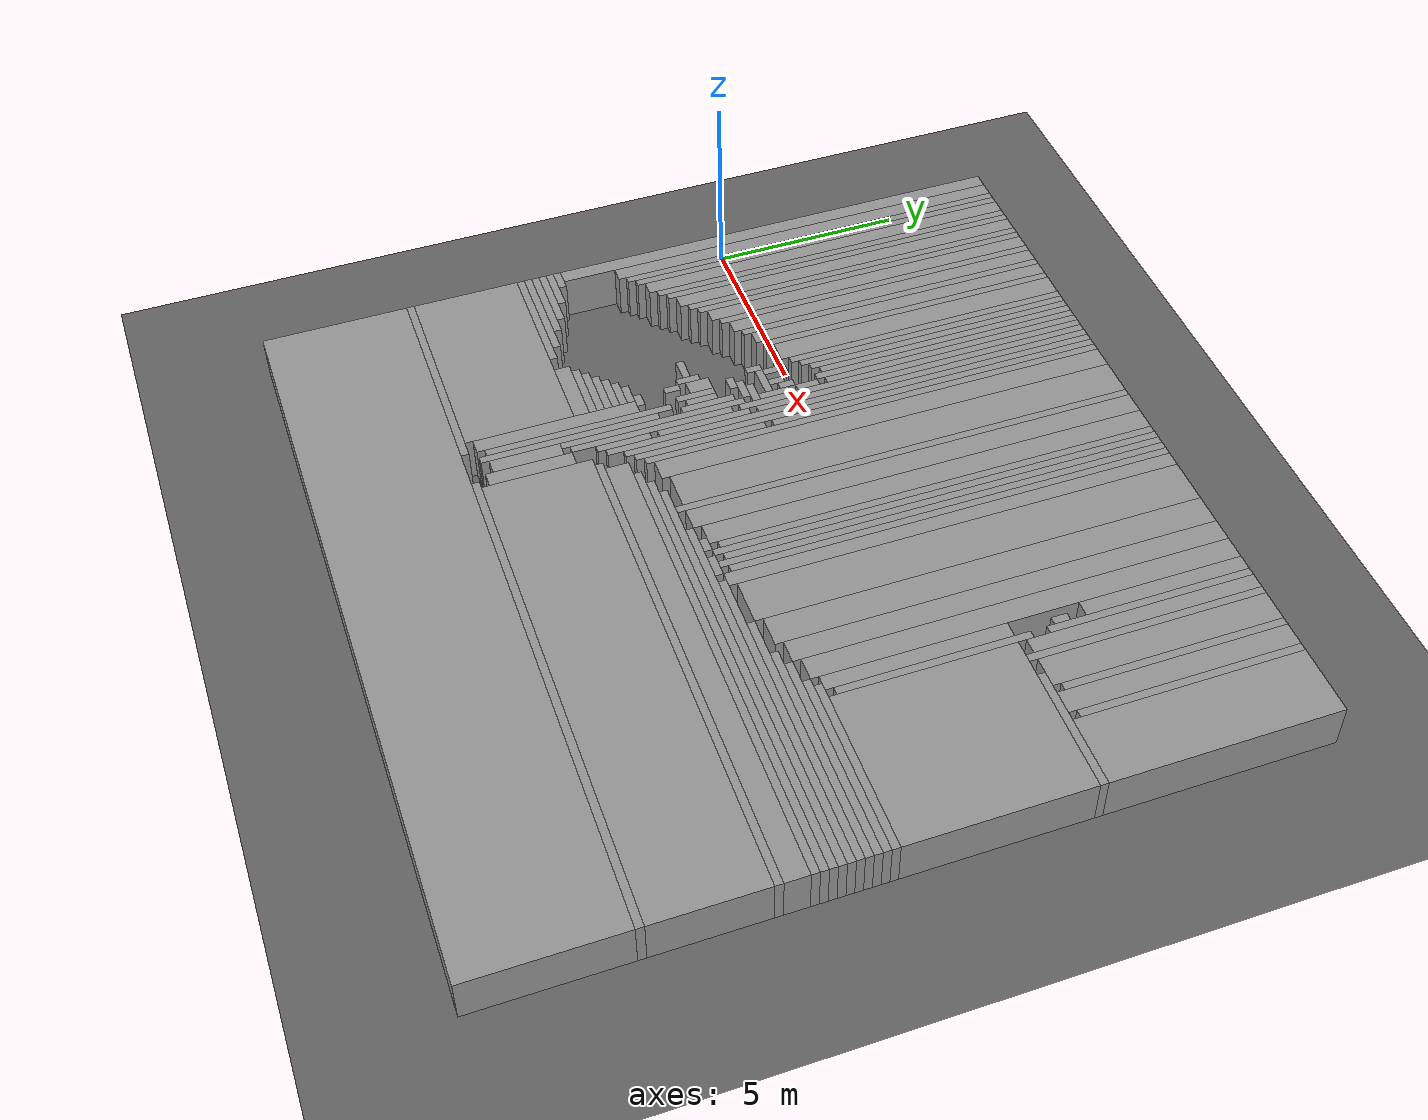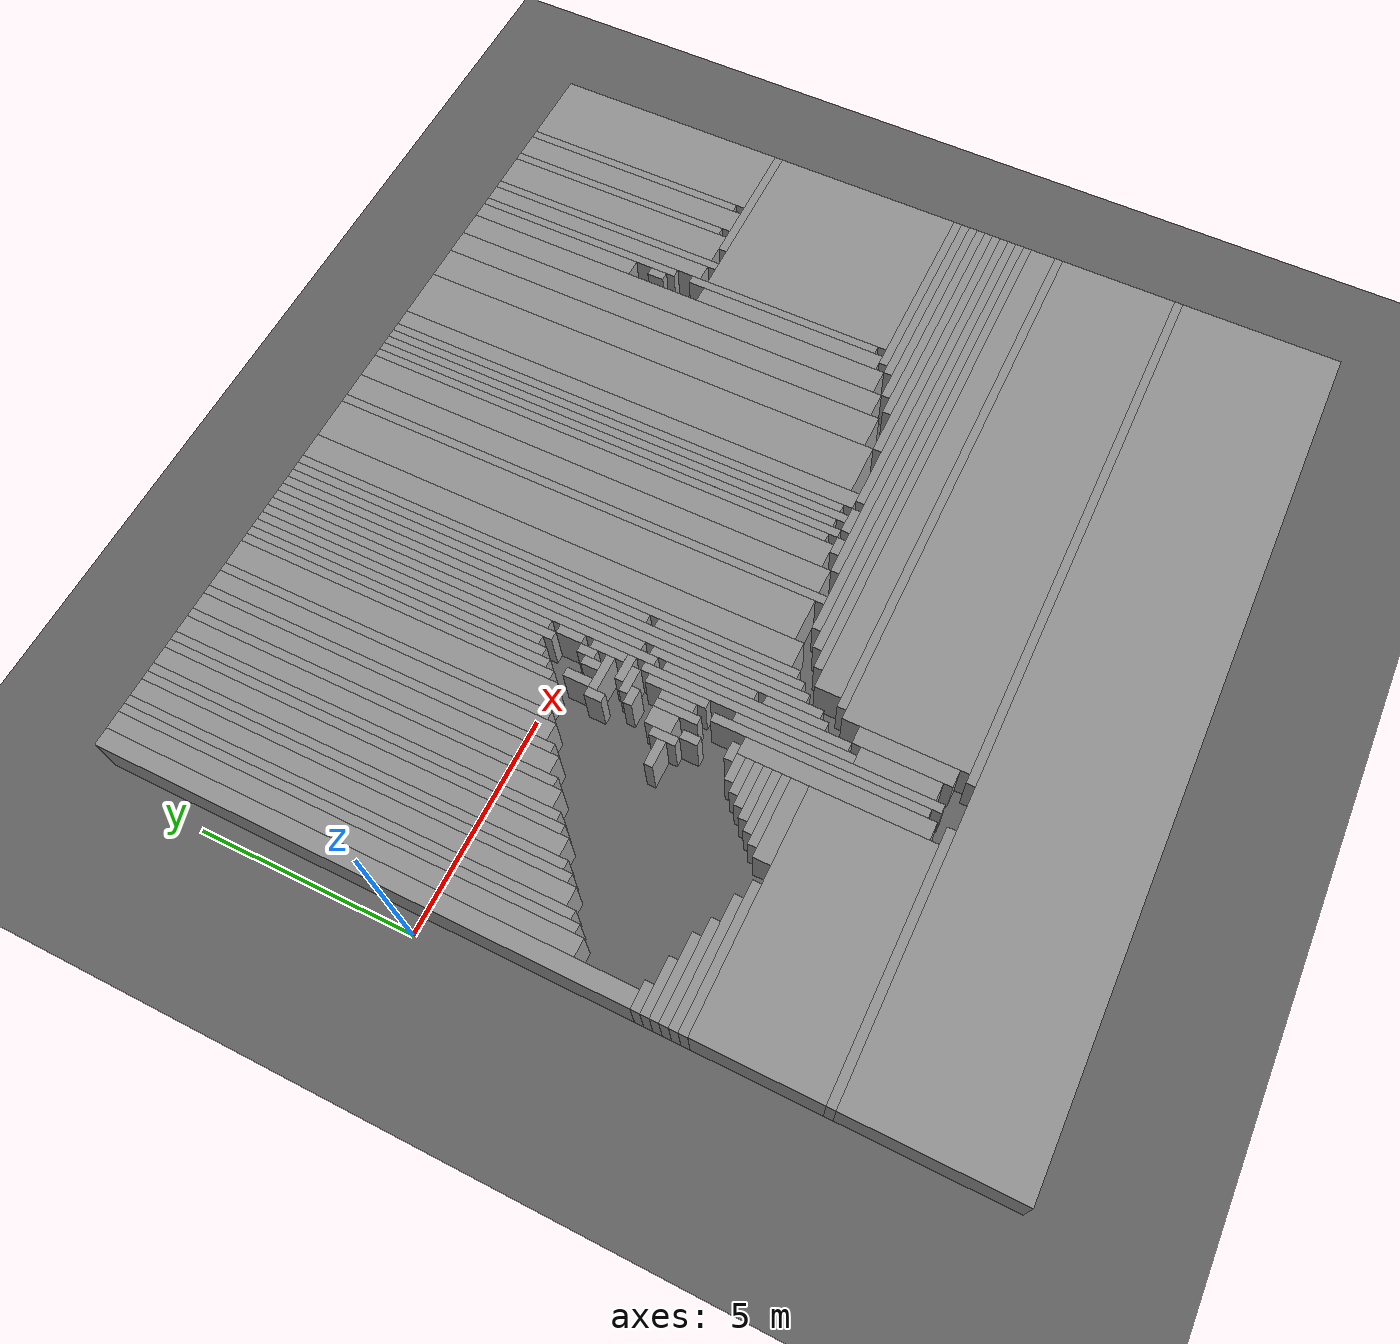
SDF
<?xml version="1.0" ?>
<sdf version="1.8">
  <world name="realroom_replica">
    <physics name="1ms" type="ignored"><max_step_size>0.001</max_step_size><real_time_factor>1.0</real_time_factor></physics>
    <plugin filename="gz-sim-physics-system" name="gz::sim::systems::Physics"/>
    <plugin filename="gz-sim-user-commands-system" name="gz::sim::systems::UserCommands"/>
    <plugin filename="gz-sim-scene-broadcaster-system" name="gz::sim::systems::SceneBroadcaster"/>
    <plugin filename="gz-sim-sensors-system" name="gz::sim::systems::Sensors"><render_engine>ogre2</render_engine></plugin>
    <gravity>0 0 -9.8</gravity>
    <light type="directional" name="sun">
      <cast_shadows>true</cast_shadows>
      <pose>0 0 10 0 0 0</pose>
      <diffuse>0.8 0.8 0.8 1</diffuse>
      <direction>-0.5 0.1 -0.9</direction>
    </light>
    <model name="ground_plane">
      <static>true</static>
      <link name="link">
        <collision name="collision"><geometry><plane><normal>0 0 1</normal><size>100 100</size></plane></geometry></collision>
        <visual name="visual"><geometry><plane><normal>0 0 1</normal><size>100 100</size></plane></geometry>
          <material><ambient>0.3 0.3 0.3 1</ambient><diffuse>0.4 0.4 0.4 1</diffuse></material></visual>
      </link>
    </model>
    <model name="obstacle_0">
      <static>true</static>
      <pose>10.400 -10.817 0.600 0 0 0</pose>
      <link name="link">
        <collision name="collision">
          <geometry><box><size>20.000 3.800 1.200</size></box></geometry>
        </collision>
        <visual name="visual">
          <geometry><box><size>20.000 3.800 1.200</size></box></geometry>
          <material><ambient>0.5 0.5 0.5 1</ambient><diffuse>0.6 0.6 0.6 1</diffuse></material>
        </visual>
      </link>
    </model>
    <model name="obstacle_1">
      <static>true</static>
      <pose>3.300 -8.817 0.600 0 0 0</pose>
      <link name="link">
        <collision name="collision">
          <geometry><box><size>5.800 0.200 1.200</size></box></geometry>
        </collision>
        <visual name="visual">
          <geometry><box><size>5.800 0.200 1.200</size></box></geometry>
          <material><ambient>0.5 0.5 0.5 1</ambient><diffuse>0.6 0.6 0.6 1</diffuse></material>
        </visual>
      </link>
    </model>
    <model name="obstacle_2">
      <static>true</static>
      <pose>13.800 -8.817 0.600 0 0 0</pose>
      <link name="link">
        <collision name="collision">
          <geometry><box><size>13.200 0.200 1.200</size></box></geometry>
        </collision>
        <visual name="visual">
          <geometry><box><size>13.200 0.200 1.200</size></box></geometry>
          <material><ambient>0.5 0.5 0.5 1</ambient><diffuse>0.6 0.6 0.6 1</diffuse></material>
        </visual>
      </link>
    </model>
    <model name="obstacle_3">
      <static>true</static>
      <pose>3.100 -7.317 0.600 0 0 0</pose>
      <link name="link">
        <collision name="collision">
          <geometry><box><size>5.400 2.800 1.200</size></box></geometry>
        </collision>
        <visual name="visual">
          <geometry><box><size>5.400 2.800 1.200</size></box></geometry>
          <material><ambient>0.5 0.5 0.5 1</ambient><diffuse>0.6 0.6 0.6 1</diffuse></material>
        </visual>
      </link>
    </model>
    <model name="obstacle_4">
      <static>true</static>
      <pose>13.900 -7.317 0.600 0 0 0</pose>
      <link name="link">
        <collision name="collision">
          <geometry><box><size>13.000 2.800 1.200</size></box></geometry>
        </collision>
        <visual name="visual">
          <geometry><box><size>13.000 2.800 1.200</size></box></geometry>
          <material><ambient>0.5 0.5 0.5 1</ambient><diffuse>0.6 0.6 0.6 1</diffuse></material>
        </visual>
      </link>
    </model>
    <model name="obstacle_5">
      <static>true</static>
      <pose>6.000 -6.417 0.600 0 0 0</pose>
      <link name="link">
        <collision name="collision">
          <geometry><box><size>0.400 4.200 1.200</size></box></geometry>
        </collision>
        <visual name="visual">
          <geometry><box><size>0.400 4.200 1.200</size></box></geometry>
          <material><ambient>0.5 0.5 0.5 1</ambient><diffuse>0.6 0.6 0.6 1</diffuse></material>
        </visual>
      </link>
    </model>
    <model name="obstacle_6">
      <static>true</static>
      <pose>6.500 -6.217 0.600 0 0 0</pose>
      <link name="link">
        <collision name="collision">
          <geometry><box><size>0.200 4.600 1.200</size></box></geometry>
        </collision>
        <visual name="visual">
          <geometry><box><size>0.200 4.600 1.200</size></box></geometry>
          <material><ambient>0.5 0.5 0.5 1</ambient><diffuse>0.6 0.6 0.6 1</diffuse></material>
        </visual>
      </link>
    </model>
    <model name="obstacle_7">
      <static>true</static>
      <pose>7.200 -7.417 0.600 0 0 0</pose>
      <link name="link">
        <collision name="collision">
          <geometry><box><size>0.400 2.200 1.200</size></box></geometry>
        </collision>
        <visual name="visual">
          <geometry><box><size>0.400 2.200 1.200</size></box></geometry>
          <material><ambient>0.5 0.5 0.5 1</ambient><diffuse>0.6 0.6 0.6 1</diffuse></material>
        </visual>
      </link>
    </model>
    <model name="obstacle_8">
      <static>true</static>
      <pose>6.300 -5.917 0.600 0 0 0</pose>
      <link name="link">
        <collision name="collision">
          <geometry><box><size>0.200 4.800 1.200</size></box></geometry>
        </collision>
        <visual name="visual">
          <geometry><box><size>0.200 4.800 1.200</size></box></geometry>
          <material><ambient>0.5 0.5 0.5 1</ambient><diffuse>0.6 0.6 0.6 1</diffuse></material>
        </visual>
      </link>
    </model>
    <model name="obstacle_9">
      <static>true</static>
      <pose>6.800 -7.417 0.600 0 0 0</pose>
      <link name="link">
        <collision name="collision">
          <geometry><box><size>0.400 1.800 1.200</size></box></geometry>
        </collision>
        <visual name="visual">
          <geometry><box><size>0.400 1.800 1.200</size></box></geometry>
          <material><ambient>0.5 0.5 0.5 1</ambient><diffuse>0.6 0.6 0.6 1</diffuse></material>
        </visual>
      </link>
    </model>
    <model name="obstacle_10">
      <static>true</static>
      <pose>6.700 -4.117 0.600 0 0 0</pose>
      <link name="link">
        <collision name="collision">
          <geometry><box><size>0.200 4.800 1.200</size></box></geometry>
        </collision>
        <visual name="visual">
          <geometry><box><size>0.200 4.800 1.200</size></box></geometry>
          <material><ambient>0.5 0.5 0.5 1</ambient><diffuse>0.6 0.6 0.6 1</diffuse></material>
        </visual>
      </link>
    </model>
    <model name="obstacle_11">
      <static>true</static>
      <pose>6.900 -4.217 0.600 0 0 0</pose>
      <link name="link">
        <collision name="collision">
          <geometry><box><size>0.200 4.200 1.200</size></box></geometry>
        </collision>
        <visual name="visual">
          <geometry><box><size>0.200 4.200 1.200</size></box></geometry>
          <material><ambient>0.5 0.5 0.5 1</ambient><diffuse>0.6 0.6 0.6 1</diffuse></material>
        </visual>
      </link>
    </model>
    <model name="obstacle_12">
      <static>true</static>
      <pose>2.000 -5.817 0.600 0 0 0</pose>
      <link name="link">
        <collision name="collision">
          <geometry><box><size>3.200 0.200 1.200</size></box></geometry>
        </collision>
        <visual name="visual">
          <geometry><box><size>3.200 0.200 1.200</size></box></geometry>
          <material><ambient>0.5 0.5 0.5 1</ambient><diffuse>0.6 0.6 0.6 1</diffuse></material>
        </visual>
      </link>
    </model>
    <model name="obstacle_13">
      <static>true</static>
      <pose>4.900 -5.717 0.600 0 0 0</pose>
      <link name="link">
        <collision name="collision">
          <geometry><box><size>1.800 0.400 1.200</size></box></geometry>
        </collision>
        <visual name="visual">
          <geometry><box><size>1.800 0.400 1.200</size></box></geometry>
          <material><ambient>0.5 0.5 0.5 1</ambient><diffuse>0.6 0.6 0.6 1</diffuse></material>
        </visual>
      </link>
    </model>
    <model name="obstacle_14">
      <static>true</static>
      <pose>14.000 -5.817 0.600 0 0 0</pose>
      <link name="link">
        <collision name="collision">
          <geometry><box><size>12.800 0.200 1.200</size></box></geometry>
        </collision>
        <visual name="visual">
          <geometry><box><size>12.800 0.200 1.200</size></box></geometry>
          <material><ambient>0.5 0.5 0.5 1</ambient><diffuse>0.6 0.6 0.6 1</diffuse></material>
        </visual>
      </link>
    </model>
    <model name="obstacle_15">
      <static>true</static>
      <pose>1.800 -5.617 0.600 0 0 0</pose>
      <link name="link">
        <collision name="collision">
          <geometry><box><size>2.800 0.200 1.200</size></box></geometry>
        </collision>
        <visual name="visual">
          <geometry><box><size>2.800 0.200 1.200</size></box></geometry>
          <material><ambient>0.5 0.5 0.5 1</ambient><diffuse>0.6 0.6 0.6 1</diffuse></material>
        </visual>
      </link>
    </model>
    <model name="obstacle_16">
      <static>true</static>
      <pose>7.100 -5.017 0.600 0 0 0</pose>
      <link name="link">
        <collision name="collision">
          <geometry><box><size>0.200 1.400 1.200</size></box></geometry>
        </collision>
        <visual name="visual">
          <geometry><box><size>0.200 1.400 1.200</size></box></geometry>
          <material><ambient>0.5 0.5 0.5 1</ambient><diffuse>0.6 0.6 0.6 1</diffuse></material>
        </visual>
      </link>
    </model>
    <model name="obstacle_17">
      <static>true</static>
      <pose>14.100 -5.417 0.600 0 0 0</pose>
      <link name="link">
        <collision name="collision">
          <geometry><box><size>12.600 0.600 1.200</size></box></geometry>
        </collision>
        <visual name="visual">
          <geometry><box><size>12.600 0.600 1.200</size></box></geometry>
          <material><ambient>0.5 0.5 0.5 1</ambient><diffuse>0.6 0.6 0.6 1</diffuse></material>
        </visual>
      </link>
    </model>
    <model name="obstacle_18">
      <static>true</static>
      <pose>1.500 -5.417 0.600 0 0 0</pose>
      <link name="link">
        <collision name="collision">
          <geometry><box><size>2.200 0.200 1.200</size></box></geometry>
        </collision>
        <visual name="visual">
          <geometry><box><size>2.200 0.200 1.200</size></box></geometry>
          <material><ambient>0.5 0.5 0.5 1</ambient><diffuse>0.6 0.6 0.6 1</diffuse></material>
        </visual>
      </link>
    </model>
    <model name="obstacle_19">
      <static>true</static>
      <pose>5.000 -5.417 0.600 0 0 0</pose>
      <link name="link">
        <collision name="collision">
          <geometry><box><size>1.600 0.200 1.200</size></box></geometry>
        </collision>
        <visual name="visual">
          <geometry><box><size>1.600 0.200 1.200</size></box></geometry>
          <material><ambient>0.5 0.5 0.5 1</ambient><diffuse>0.6 0.6 0.6 1</diffuse></material>
        </visual>
      </link>
    </model>
    <model name="obstacle_20">
      <static>true</static>
      <pose>7.300 0.983 0.600 0 0 0</pose>
      <link name="link">
        <collision name="collision">
          <geometry><box><size>0.200 13.000 1.200</size></box></geometry>
        </collision>
        <visual name="visual">
          <geometry><box><size>0.200 13.000 1.200</size></box></geometry>
          <material><ambient>0.5 0.5 0.5 1</ambient><diffuse>0.6 0.6 0.6 1</diffuse></material>
        </visual>
      </link>
    </model>
    <model name="obstacle_21">
      <static>true</static>
      <pose>1.300 -5.217 0.600 0 0 0</pose>
      <link name="link">
        <collision name="collision">
          <geometry><box><size>1.800 0.200 1.200</size></box></geometry>
        </collision>
        <visual name="visual">
          <geometry><box><size>1.800 0.200 1.200</size></box></geometry>
          <material><ambient>0.5 0.5 0.5 1</ambient><diffuse>0.6 0.6 0.6 1</diffuse></material>
        </visual>
      </link>
    </model>
    <model name="obstacle_22">
      <static>true</static>
      <pose>5.100 -5.217 0.600 0 0 0</pose>
      <link name="link">
        <collision name="collision">
          <geometry><box><size>1.400 0.200 1.200</size></box></geometry>
        </collision>
        <visual name="visual">
          <geometry><box><size>1.400 0.200 1.200</size></box></geometry>
          <material><ambient>0.5 0.5 0.5 1</ambient><diffuse>0.6 0.6 0.6 1</diffuse></material>
        </visual>
      </link>
    </model>
    <model name="obstacle_23">
      <static>true</static>
      <pose>1.000 -5.017 0.600 0 0 0</pose>
      <link name="link">
        <collision name="collision">
          <geometry><box><size>1.200 0.200 1.200</size></box></geometry>
        </collision>
        <visual name="visual">
          <geometry><box><size>1.200 0.200 1.200</size></box></geometry>
          <material><ambient>0.5 0.5 0.5 1</ambient><diffuse>0.6 0.6 0.6 1</diffuse></material>
        </visual>
      </link>
    </model>
    <model name="obstacle_24">
      <static>true</static>
      <pose>5.200 -5.017 0.600 0 0 0</pose>
      <link name="link">
        <collision name="collision">
          <geometry><box><size>1.200 0.200 1.200</size></box></geometry>
        </collision>
        <visual name="visual">
          <geometry><box><size>1.200 0.200 1.200</size></box></geometry>
          <material><ambient>0.5 0.5 0.5 1</ambient><diffuse>0.6 0.6 0.6 1</diffuse></material>
        </visual>
      </link>
    </model>
    <model name="obstacle_25">
      <static>true</static>
      <pose>7.500 1.183 0.600 0 0 0</pose>
      <link name="link">
        <collision name="collision">
          <geometry><box><size>0.200 12.600 1.200</size></box></geometry>
        </collision>
        <visual name="visual">
          <geometry><box><size>0.200 12.600 1.200</size></box></geometry>
          <material><ambient>0.5 0.5 0.5 1</ambient><diffuse>0.6 0.6 0.6 1</diffuse></material>
        </visual>
      </link>
    </model>
    <model name="obstacle_26">
      <static>true</static>
      <pose>14.300 -5.017 0.600 0 0 0</pose>
      <link name="link">
        <collision name="collision">
          <geometry><box><size>12.200 0.200 1.200</size></box></geometry>
        </collision>
        <visual name="visual">
          <geometry><box><size>12.200 0.200 1.200</size></box></geometry>
          <material><ambient>0.5 0.5 0.5 1</ambient><diffuse>0.6 0.6 0.6 1</diffuse></material>
        </visual>
      </link>
    </model>
    <model name="obstacle_27">
      <static>true</static>
      <pose>0.700 -4.817 0.600 0 0 0</pose>
      <link name="link">
        <collision name="collision">
          <geometry><box><size>0.600 0.200 1.200</size></box></geometry>
        </collision>
        <visual name="visual">
          <geometry><box><size>0.600 0.200 1.200</size></box></geometry>
          <material><ambient>0.5 0.5 0.5 1</ambient><diffuse>0.6 0.6 0.6 1</diffuse></material>
        </visual>
      </link>
    </model>
    <model name="obstacle_28">
      <static>true</static>
      <pose>5.300 -4.817 0.600 0 0 0</pose>
      <link name="link">
        <collision name="collision">
          <geometry><box><size>1.000 0.200 1.200</size></box></geometry>
        </collision>
        <visual name="visual">
          <geometry><box><size>1.000 0.200 1.200</size></box></geometry>
          <material><ambient>0.5 0.5 0.5 1</ambient><diffuse>0.6 0.6 0.6 1</diffuse></material>
        </visual>
      </link>
    </model>
    <model name="obstacle_29">
      <static>true</static>
      <pose>7.700 -3.217 0.600 0 0 0</pose>
      <link name="link">
        <collision name="collision">
          <geometry><box><size>0.200 3.400 1.200</size></box></geometry>
        </collision>
        <visual name="visual">
          <geometry><box><size>0.200 3.400 1.200</size></box></geometry>
          <material><ambient>0.5 0.5 0.5 1</ambient><diffuse>0.6 0.6 0.6 1</diffuse></material>
        </visual>
      </link>
    </model>
    <model name="obstacle_30">
      <static>true</static>
      <pose>14.500 -4.817 0.600 0 0 0</pose>
      <link name="link">
        <collision name="collision">
          <geometry><box><size>11.800 0.200 1.200</size></box></geometry>
        </collision>
        <visual name="visual">
          <geometry><box><size>11.800 0.200 1.200</size></box></geometry>
          <material><ambient>0.5 0.5 0.5 1</ambient><diffuse>0.6 0.6 0.6 1</diffuse></material>
        </visual>
      </link>
    </model>
    <model name="obstacle_31">
      <static>true</static>
      <pose>0.600 1.383 0.600 0 0 0</pose>
      <link name="link">
        <collision name="collision">
          <geometry><box><size>0.400 12.200 1.200</size></box></geometry>
        </collision>
        <visual name="visual">
          <geometry><box><size>0.400 12.200 1.200</size></box></geometry>
          <material><ambient>0.5 0.5 0.5 1</ambient><diffuse>0.6 0.6 0.6 1</diffuse></material>
        </visual>
      </link>
    </model>
    <model name="obstacle_32">
      <static>true</static>
      <pose>5.400 -4.617 0.600 0 0 0</pose>
      <link name="link">
        <collision name="collision">
          <geometry><box><size>0.800 0.200 1.200</size></box></geometry>
        </collision>
        <visual name="visual">
          <geometry><box><size>0.800 0.200 1.200</size></box></geometry>
          <material><ambient>0.5 0.5 0.5 1</ambient><diffuse>0.6 0.6 0.6 1</diffuse></material>
        </visual>
      </link>
    </model>
    <model name="obstacle_33">
      <static>true</static>
      <pose>7.900 1.383 0.600 0 0 0</pose>
      <link name="link">
        <collision name="collision">
          <geometry><box><size>0.200 12.200 1.200</size></box></geometry>
        </collision>
        <visual name="visual">
          <geometry><box><size>0.200 12.200 1.200</size></box></geometry>
          <material><ambient>0.5 0.5 0.5 1</ambient><diffuse>0.6 0.6 0.6 1</diffuse></material>
        </visual>
      </link>
    </model>
    <model name="obstacle_34">
      <static>true</static>
      <pose>14.700 -4.617 0.600 0 0 0</pose>
      <link name="link">
        <collision name="collision">
          <geometry><box><size>11.400 0.200 1.200</size></box></geometry>
        </collision>
        <visual name="visual">
          <geometry><box><size>11.400 0.200 1.200</size></box></geometry>
          <material><ambient>0.5 0.5 0.5 1</ambient><diffuse>0.6 0.6 0.6 1</diffuse></material>
        </visual>
      </link>
    </model>
    <model name="obstacle_35">
      <static>true</static>
      <pose>5.500 -4.417 0.600 0 0 0</pose>
      <link name="link">
        <collision name="collision">
          <geometry><box><size>0.600 0.200 1.200</size></box></geometry>
        </collision>
        <visual name="visual">
          <geometry><box><size>0.600 0.200 1.200</size></box></geometry>
          <material><ambient>0.5 0.5 0.5 1</ambient><diffuse>0.6 0.6 0.6 1</diffuse></material>
        </visual>
      </link>
    </model>
    <model name="obstacle_36">
      <static>true</static>
      <pose>8.300 1.483 0.600 0 0 0</pose>
      <link name="link">
        <collision name="collision">
          <geometry><box><size>0.600 12.000 1.200</size></box></geometry>
        </collision>
        <visual name="visual">
          <geometry><box><size>0.600 12.000 1.200</size></box></geometry>
          <material><ambient>0.5 0.5 0.5 1</ambient><diffuse>0.6 0.6 0.6 1</diffuse></material>
        </visual>
      </link>
    </model>
    <model name="obstacle_37">
      <static>true</static>
      <pose>9.700 1.483 0.600 0 0 0</pose>
      <link name="link">
        <collision name="collision">
          <geometry><box><size>0.200 12.000 1.200</size></box></geometry>
        </collision>
        <visual name="visual">
          <geometry><box><size>0.200 12.000 1.200</size></box></geometry>
          <material><ambient>0.5 0.5 0.5 1</ambient><diffuse>0.6 0.6 0.6 1</diffuse></material>
        </visual>
      </link>
    </model>
    <model name="obstacle_38">
      <static>true</static>
      <pose>15.400 -4.417 0.600 0 0 0</pose>
      <link name="link">
        <collision name="collision">
          <geometry><box><size>10.000 0.200 1.200</size></box></geometry>
        </collision>
        <visual name="visual">
          <geometry><box><size>10.000 0.200 1.200</size></box></geometry>
          <material><ambient>0.5 0.5 0.5 1</ambient><diffuse>0.6 0.6 0.6 1</diffuse></material>
        </visual>
      </link>
    </model>
    <model name="obstacle_39">
      <static>true</static>
      <pose>5.800 -4.217 0.600 0 0 0</pose>
      <link name="link">
        <collision name="collision">
          <geometry><box><size>0.400 0.200 1.200</size></box></geometry>
        </collision>
        <visual name="visual">
          <geometry><box><size>0.400 0.200 1.200</size></box></geometry>
          <material><ambient>0.5 0.5 0.5 1</ambient><diffuse>0.6 0.6 0.6 1</diffuse></material>
        </visual>
      </link>
    </model>
    <model name="obstacle_40">
      <static>true</static>
      <pose>9.100 1.583 0.600 0 0 0</pose>
      <link name="link">
        <collision name="collision">
          <geometry><box><size>1.000 11.800 1.200</size></box></geometry>
        </collision>
        <visual name="visual">
          <geometry><box><size>1.000 11.800 1.200</size></box></geometry>
          <material><ambient>0.5 0.5 0.5 1</ambient><diffuse>0.6 0.6 0.6 1</diffuse></material>
        </visual>
      </link>
    </model>
    <model name="obstacle_41">
      <static>true</static>
      <pose>10.100 1.583 0.600 0 0 0</pose>
      <link name="link">
        <collision name="collision">
          <geometry><box><size>0.600 11.800 1.200</size></box></geometry>
        </collision>
        <visual name="visual">
          <geometry><box><size>0.600 11.800 1.200</size></box></geometry>
          <material><ambient>0.5 0.5 0.5 1</ambient><diffuse>0.6 0.6 0.6 1</diffuse></material>
        </visual>
      </link>
    </model>
    <model name="obstacle_42">
      <static>true</static>
      <pose>11.000 -4.217 0.600 0 0 0</pose>
      <link name="link">
        <collision name="collision">
          <geometry><box><size>0.400 0.200 1.200</size></box></geometry>
        </collision>
        <visual name="visual">
          <geometry><box><size>0.400 0.200 1.200</size></box></geometry>
          <material><ambient>0.5 0.5 0.5 1</ambient><diffuse>0.6 0.6 0.6 1</diffuse></material>
        </visual>
      </link>
    </model>
    <model name="obstacle_43">
      <static>true</static>
      <pose>11.700 -4.217 0.600 0 0 0</pose>
      <link name="link">
        <collision name="collision">
          <geometry><box><size>0.600 0.200 1.200</size></box></geometry>
        </collision>
        <visual name="visual">
          <geometry><box><size>0.600 0.200 1.200</size></box></geometry>
          <material><ambient>0.5 0.5 0.5 1</ambient><diffuse>0.6 0.6 0.6 1</diffuse></material>
        </visual>
      </link>
    </model>
    <model name="obstacle_44">
      <static>true</static>
      <pose>16.300 -4.217 0.600 0 0 0</pose>
      <link name="link">
        <collision name="collision">
          <geometry><box><size>8.200 0.200 1.200</size></box></geometry>
        </collision>
        <visual name="visual">
          <geometry><box><size>8.200 0.200 1.200</size></box></geometry>
          <material><ambient>0.5 0.5 0.5 1</ambient><diffuse>0.6 0.6 0.6 1</diffuse></material>
        </visual>
      </link>
    </model>
    <model name="obstacle_45">
      <static>true</static>
      <pose>7.100 -2.917 0.600 0 0 0</pose>
      <link name="link">
        <collision name="collision">
          <geometry><box><size>0.200 2.400 1.200</size></box></geometry>
        </collision>
        <visual name="visual">
          <geometry><box><size>0.200 2.400 1.200</size></box></geometry>
          <material><ambient>0.5 0.5 0.5 1</ambient><diffuse>0.6 0.6 0.6 1</diffuse></material>
        </visual>
      </link>
    </model>
    <model name="obstacle_46">
      <static>true</static>
      <pose>10.700 1.683 0.600 0 0 0</pose>
      <link name="link">
        <collision name="collision">
          <geometry><box><size>0.600 11.600 1.200</size></box></geometry>
        </collision>
        <visual name="visual">
          <geometry><box><size>0.600 11.600 1.200</size></box></geometry>
          <material><ambient>0.5 0.5 0.5 1</ambient><diffuse>0.6 0.6 0.6 1</diffuse></material>
        </visual>
      </link>
    </model>
    <model name="obstacle_47">
      <static>true</static>
      <pose>11.300 1.683 0.600 0 0 0</pose>
      <link name="link">
        <collision name="collision">
          <geometry><box><size>0.200 11.600 1.200</size></box></geometry>
        </collision>
        <visual name="visual">
          <geometry><box><size>0.200 11.600 1.200</size></box></geometry>
          <material><ambient>0.5 0.5 0.5 1</ambient><diffuse>0.6 0.6 0.6 1</diffuse></material>
        </visual>
      </link>
    </model>
    <model name="obstacle_48">
      <static>true</static>
      <pose>11.700 1.683 0.600 0 0 0</pose>
      <link name="link">
        <collision name="collision">
          <geometry><box><size>0.200 11.600 1.200</size></box></geometry>
        </collision>
        <visual name="visual">
          <geometry><box><size>0.200 11.600 1.200</size></box></geometry>
          <material><ambient>0.5 0.5 0.5 1</ambient><diffuse>0.6 0.6 0.6 1</diffuse></material>
        </visual>
      </link>
    </model>
    <model name="obstacle_49">
      <static>true</static>
      <pose>12.200 1.683 0.600 0 0 0</pose>
      <link name="link">
        <collision name="collision">
          <geometry><box><size>0.400 11.600 1.200</size></box></geometry>
        </collision>
        <visual name="visual">
          <geometry><box><size>0.400 11.600 1.200</size></box></geometry>
          <material><ambient>0.5 0.5 0.5 1</ambient><diffuse>0.6 0.6 0.6 1</diffuse></material>
        </visual>
      </link>
    </model>
    <model name="obstacle_50">
      <static>true</static>
      <pose>17.000 -4.017 0.600 0 0 0</pose>
      <link name="link">
        <collision name="collision">
          <geometry><box><size>6.800 0.200 1.200</size></box></geometry>
        </collision>
        <visual name="visual">
          <geometry><box><size>6.800 0.200 1.200</size></box></geometry>
          <material><ambient>0.5 0.5 0.5 1</ambient><diffuse>0.6 0.6 0.6 1</diffuse></material>
        </visual>
      </link>
    </model>
    <model name="obstacle_51">
      <static>true</static>
      <pose>11.100 1.783 0.600 0 0 0</pose>
      <link name="link">
        <collision name="collision">
          <geometry><box><size>0.200 11.400 1.200</size></box></geometry>
        </collision>
        <visual name="visual">
          <geometry><box><size>0.200 11.400 1.200</size></box></geometry>
          <material><ambient>0.5 0.5 0.5 1</ambient><diffuse>0.6 0.6 0.6 1</diffuse></material>
        </visual>
      </link>
    </model>
    <model name="obstacle_52">
      <static>true</static>
      <pose>11.500 1.783 0.600 0 0 0</pose>
      <link name="link">
        <collision name="collision">
          <geometry><box><size>0.200 11.400 1.200</size></box></geometry>
        </collision>
        <visual name="visual">
          <geometry><box><size>0.200 11.400 1.200</size></box></geometry>
          <material><ambient>0.5 0.5 0.5 1</ambient><diffuse>0.6 0.6 0.6 1</diffuse></material>
        </visual>
      </link>
    </model>
    <model name="obstacle_53">
      <static>true</static>
      <pose>11.900 1.783 0.600 0 0 0</pose>
      <link name="link">
        <collision name="collision">
          <geometry><box><size>0.200 11.400 1.200</size></box></geometry>
        </collision>
        <visual name="visual">
          <geometry><box><size>0.200 11.400 1.200</size></box></geometry>
          <material><ambient>0.5 0.5 0.5 1</ambient><diffuse>0.6 0.6 0.6 1</diffuse></material>
        </visual>
      </link>
    </model>
    <model name="obstacle_54">
      <static>true</static>
      <pose>13.000 1.783 0.600 0 0 0</pose>
      <link name="link">
        <collision name="collision">
          <geometry><box><size>1.200 11.400 1.200</size></box></geometry>
        </collision>
        <visual name="visual">
          <geometry><box><size>1.200 11.400 1.200</size></box></geometry>
          <material><ambient>0.5 0.5 0.5 1</ambient><diffuse>0.6 0.6 0.6 1</diffuse></material>
        </visual>
      </link>
    </model>
    <model name="obstacle_55">
      <static>true</static>
      <pose>17.500 -3.817 0.600 0 0 0</pose>
      <link name="link">
        <collision name="collision">
          <geometry><box><size>5.800 0.200 1.200</size></box></geometry>
        </collision>
        <visual name="visual">
          <geometry><box><size>5.800 0.200 1.200</size></box></geometry>
          <material><ambient>0.5 0.5 0.5 1</ambient><diffuse>0.6 0.6 0.6 1</diffuse></material>
        </visual>
      </link>
    </model>
    <model name="obstacle_56">
      <static>true</static>
      <pose>14.000 1.883 0.600 0 0 0</pose>
      <link name="link">
        <collision name="collision">
          <geometry><box><size>0.800 11.200 1.200</size></box></geometry>
        </collision>
        <visual name="visual">
          <geometry><box><size>0.800 11.200 1.200</size></box></geometry>
          <material><ambient>0.5 0.5 0.5 1</ambient><diffuse>0.6 0.6 0.6 1</diffuse></material>
        </visual>
      </link>
    </model>
    <model name="obstacle_57">
      <static>true</static>
      <pose>17.700 -3.617 0.600 0 0 0</pose>
      <link name="link">
        <collision name="collision">
          <geometry><box><size>5.400 0.200 1.200</size></box></geometry>
        </collision>
        <visual name="visual">
          <geometry><box><size>5.400 0.200 1.200</size></box></geometry>
          <material><ambient>0.5 0.5 0.5 1</ambient><diffuse>0.6 0.6 0.6 1</diffuse></material>
        </visual>
      </link>
    </model>
    <model name="obstacle_58">
      <static>true</static>
      <pose>5.700 -3.317 0.600 0 0 0</pose>
      <link name="link">
        <collision name="collision">
          <geometry><box><size>0.200 0.400 1.200</size></box></geometry>
        </collision>
        <visual name="visual">
          <geometry><box><size>0.200 0.400 1.200</size></box></geometry>
          <material><ambient>0.5 0.5 0.5 1</ambient><diffuse>0.6 0.6 0.6 1</diffuse></material>
        </visual>
      </link>
    </model>
    <model name="obstacle_59">
      <static>true</static>
      <pose>14.700 1.983 0.600 0 0 0</pose>
      <link name="link">
        <collision name="collision">
          <geometry><box><size>0.600 11.000 1.200</size></box></geometry>
        </collision>
        <visual name="visual">
          <geometry><box><size>0.600 11.000 1.200</size></box></geometry>
          <material><ambient>0.5 0.5 0.5 1</ambient><diffuse>0.6 0.6 0.6 1</diffuse></material>
        </visual>
      </link>
    </model>
    <model name="obstacle_60">
      <static>true</static>
      <pose>18.000 -3.417 0.600 0 0 0</pose>
      <link name="link">
        <collision name="collision">
          <geometry><box><size>4.800 0.200 1.200</size></box></geometry>
        </collision>
        <visual name="visual">
          <geometry><box><size>4.800 0.200 1.200</size></box></geometry>
          <material><ambient>0.5 0.5 0.5 1</ambient><diffuse>0.6 0.6 0.6 1</diffuse></material>
        </visual>
      </link>
    </model>
    <model name="obstacle_61">
      <static>true</static>
      <pose>1.000 2.083 0.600 0 0 0</pose>
      <link name="link">
        <collision name="collision">
          <geometry><box><size>0.400 10.800 1.200</size></box></geometry>
        </collision>
        <visual name="visual">
          <geometry><box><size>0.400 10.800 1.200</size></box></geometry>
          <material><ambient>0.5 0.5 0.5 1</ambient><diffuse>0.6 0.6 0.6 1</diffuse></material>
        </visual>
      </link>
    </model>
    <model name="obstacle_62">
      <static>true</static>
      <pose>6.100 -2.817 0.600 0 0 0</pose>
      <link name="link">
        <collision name="collision">
          <geometry><box><size>0.200 1.000 1.200</size></box></geometry>
        </collision>
        <visual name="visual">
          <geometry><box><size>0.200 1.000 1.200</size></box></geometry>
          <material><ambient>0.5 0.5 0.5 1</ambient><diffuse>0.6 0.6 0.6 1</diffuse></material>
        </visual>
      </link>
    </model>
    <model name="obstacle_63">
      <static>true</static>
      <pose>6.500 -2.617 0.600 0 0 0</pose>
      <link name="link">
        <collision name="collision">
          <geometry><box><size>0.200 1.400 1.200</size></box></geometry>
        </collision>
        <visual name="visual">
          <geometry><box><size>0.200 1.400 1.200</size></box></geometry>
          <material><ambient>0.5 0.5 0.5 1</ambient><diffuse>0.6 0.6 0.6 1</diffuse></material>
        </visual>
      </link>
    </model>
    <model name="obstacle_64">
      <static>true</static>
      <pose>15.300 2.083 0.600 0 0 0</pose>
      <link name="link">
        <collision name="collision">
          <geometry><box><size>0.600 10.800 1.200</size></box></geometry>
        </collision>
        <visual name="visual">
          <geometry><box><size>0.600 10.800 1.200</size></box></geometry>
          <material><ambient>0.5 0.5 0.5 1</ambient><diffuse>0.6 0.6 0.6 1</diffuse></material>
        </visual>
      </link>
    </model>
    <model name="obstacle_65">
      <static>true</static>
      <pose>18.100 -3.217 0.600 0 0 0</pose>
      <link name="link">
        <collision name="collision">
          <geometry><box><size>4.600 0.200 1.200</size></box></geometry>
        </collision>
        <visual name="visual">
          <geometry><box><size>4.600 0.200 1.200</size></box></geometry>
          <material><ambient>0.5 0.5 0.5 1</ambient><diffuse>0.6 0.6 0.6 1</diffuse></material>
        </visual>
      </link>
    </model>
    <model name="obstacle_66">
      <static>true</static>
      <pose>1.300 2.183 0.600 0 0 0</pose>
      <link name="link">
        <collision name="collision">
          <geometry><box><size>0.200 10.600 1.200</size></box></geometry>
        </collision>
        <visual name="visual">
          <geometry><box><size>0.200 10.600 1.200</size></box></geometry>
          <material><ambient>0.5 0.5 0.5 1</ambient><diffuse>0.6 0.6 0.6 1</diffuse></material>
        </visual>
      </link>
    </model>
    <model name="obstacle_67">
      <static>true</static>
      <pose>5.500 -2.817 0.600 0 0 0</pose>
      <link name="link">
        <collision name="collision">
          <geometry><box><size>0.200 0.600 1.200</size></box></geometry>
        </collision>
        <visual name="visual">
          <geometry><box><size>0.200 0.600 1.200</size></box></geometry>
          <material><ambient>0.5 0.5 0.5 1</ambient><diffuse>0.6 0.6 0.6 1</diffuse></material>
        </visual>
      </link>
    </model>
    <model name="obstacle_68">
      <static>true</static>
      <pose>6.300 -2.717 0.600 0 0 0</pose>
      <link name="link">
        <collision name="collision">
          <geometry><box><size>0.200 0.800 1.200</size></box></geometry>
        </collision>
        <visual name="visual">
          <geometry><box><size>0.200 0.800 1.200</size></box></geometry>
          <material><ambient>0.5 0.5 0.5 1</ambient><diffuse>0.6 0.6 0.6 1</diffuse></material>
        </visual>
      </link>
    </model>
    <model name="obstacle_69">
      <static>true</static>
      <pose>15.800 -0.817 0.600 0 0 0</pose>
      <link name="link">
        <collision name="collision">
          <geometry><box><size>0.400 4.600 1.200</size></box></geometry>
        </collision>
        <visual name="visual">
          <geometry><box><size>0.400 4.600 1.200</size></box></geometry>
          <material><ambient>0.5 0.5 0.5 1</ambient><diffuse>0.6 0.6 0.6 1</diffuse></material>
        </visual>
      </link>
    </model>
    <model name="obstacle_70">
      <static>true</static>
      <pose>18.300 -0.817 0.600 0 0 0</pose>
      <link name="link">
        <collision name="collision">
          <geometry><box><size>4.200 4.600 1.200</size></box></geometry>
        </collision>
        <visual name="visual">
          <geometry><box><size>4.200 4.600 1.200</size></box></geometry>
          <material><ambient>0.5 0.5 0.5 1</ambient><diffuse>0.6 0.6 0.6 1</diffuse></material>
        </visual>
      </link>
    </model>
    <model name="obstacle_71">
      <static>true</static>
      <pose>1.500 2.283 0.600 0 0 0</pose>
      <link name="link">
        <collision name="collision">
          <geometry><box><size>0.200 10.400 1.200</size></box></geometry>
        </collision>
        <visual name="visual">
          <geometry><box><size>0.200 10.400 1.200</size></box></geometry>
          <material><ambient>0.5 0.5 0.5 1</ambient><diffuse>0.6 0.6 0.6 1</diffuse></material>
        </visual>
      </link>
    </model>
    <model name="obstacle_72">
      <static>true</static>
      <pose>5.100 -2.817 0.600 0 0 0</pose>
      <link name="link">
        <collision name="collision">
          <geometry><box><size>0.600 0.200 1.200</size></box></geometry>
        </collision>
        <visual name="visual">
          <geometry><box><size>0.600 0.200 1.200</size></box></geometry>
          <material><ambient>0.5 0.5 0.5 1</ambient><diffuse>0.6 0.6 0.6 1</diffuse></material>
        </visual>
      </link>
    </model>
    <model name="obstacle_73">
      <static>true</static>
      <pose>5.800 -2.617 0.600 0 0 0</pose>
      <link name="link">
        <collision name="collision">
          <geometry><box><size>0.400 0.600 1.200</size></box></geometry>
        </collision>
        <visual name="visual">
          <geometry><box><size>0.400 0.600 1.200</size></box></geometry>
          <material><ambient>0.5 0.5 0.5 1</ambient><diffuse>0.6 0.6 0.6 1</diffuse></material>
        </visual>
      </link>
    </model>
    <model name="obstacle_74">
      <static>true</static>
      <pose>16.100 -0.517 0.600 0 0 0</pose>
      <link name="link">
        <collision name="collision">
          <geometry><box><size>0.200 4.800 1.200</size></box></geometry>
        </collision>
        <visual name="visual">
          <geometry><box><size>0.200 4.800 1.200</size></box></geometry>
          <material><ambient>0.5 0.5 0.5 1</ambient><diffuse>0.6 0.6 0.6 1</diffuse></material>
        </visual>
      </link>
    </model>
    <model name="obstacle_75">
      <static>true</static>
      <pose>1.800 2.383 0.600 0 0 0</pose>
      <link name="link">
        <collision name="collision">
          <geometry><box><size>0.400 10.200 1.200</size></box></geometry>
        </collision>
        <visual name="visual">
          <geometry><box><size>0.400 10.200 1.200</size></box></geometry>
          <material><ambient>0.5 0.5 0.5 1</ambient><diffuse>0.6 0.6 0.6 1</diffuse></material>
        </visual>
      </link>
    </model>
    <model name="obstacle_76">
      <static>true</static>
      <pose>2.100 2.483 0.600 0 0 0</pose>
      <link name="link">
        <collision name="collision">
          <geometry><box><size>0.200 10.000 1.200</size></box></geometry>
        </collision>
        <visual name="visual">
          <geometry><box><size>0.200 10.000 1.200</size></box></geometry>
          <material><ambient>0.5 0.5 0.5 1</ambient><diffuse>0.6 0.6 0.6 1</diffuse></material>
        </visual>
      </link>
    </model>
    <model name="obstacle_77">
      <static>true</static>
      <pose>2.300 2.583 0.600 0 0 0</pose>
      <link name="link">
        <collision name="collision">
          <geometry><box><size>0.200 9.800 1.200</size></box></geometry>
        </collision>
        <visual name="visual">
          <geometry><box><size>0.200 9.800 1.200</size></box></geometry>
          <material><ambient>0.5 0.5 0.5 1</ambient><diffuse>0.6 0.6 0.6 1</diffuse></material>
        </visual>
      </link>
    </model>
    <model name="obstacle_78">
      <static>true</static>
      <pose>2.600 2.683 0.600 0 0 0</pose>
      <link name="link">
        <collision name="collision">
          <geometry><box><size>0.400 9.600 1.200</size></box></geometry>
        </collision>
        <visual name="visual">
          <geometry><box><size>0.400 9.600 1.200</size></box></geometry>
          <material><ambient>0.5 0.5 0.5 1</ambient><diffuse>0.6 0.6 0.6 1</diffuse></material>
        </visual>
      </link>
    </model>
    <model name="obstacle_79">
      <static>true</static>
      <pose>2.900 2.783 0.600 0 0 0</pose>
      <link name="link">
        <collision name="collision">
          <geometry><box><size>0.200 9.400 1.200</size></box></geometry>
        </collision>
        <visual name="visual">
          <geometry><box><size>0.200 9.400 1.200</size></box></geometry>
          <material><ambient>0.5 0.5 0.5 1</ambient><diffuse>0.6 0.6 0.6 1</diffuse></material>
        </visual>
      </link>
    </model>
    <model name="obstacle_80">
      <static>true</static>
      <pose>6.000 -1.817 0.600 0 0 0</pose>
      <link name="link">
        <collision name="collision">
          <geometry><box><size>0.400 0.200 1.200</size></box></geometry>
        </collision>
        <visual name="visual">
          <geometry><box><size>0.400 0.200 1.200</size></box></geometry>
          <material><ambient>0.5 0.5 0.5 1</ambient><diffuse>0.6 0.6 0.6 1</diffuse></material>
        </visual>
      </link>
    </model>
    <model name="obstacle_81">
      <static>true</static>
      <pose>6.900 2.783 0.600 0 0 0</pose>
      <link name="link">
        <collision name="collision">
          <geometry><box><size>0.200 9.400 1.200</size></box></geometry>
        </collision>
        <visual name="visual">
          <geometry><box><size>0.200 9.400 1.200</size></box></geometry>
          <material><ambient>0.5 0.5 0.5 1</ambient><diffuse>0.6 0.6 0.6 1</diffuse></material>
        </visual>
      </link>
    </model>
    <model name="obstacle_82">
      <static>true</static>
      <pose>3.100 2.883 0.600 0 0 0</pose>
      <link name="link">
        <collision name="collision">
          <geometry><box><size>0.200 9.200 1.200</size></box></geometry>
        </collision>
        <visual name="visual">
          <geometry><box><size>0.200 9.200 1.200</size></box></geometry>
          <material><ambient>0.5 0.5 0.5 1</ambient><diffuse>0.6 0.6 0.6 1</diffuse></material>
        </visual>
      </link>
    </model>
    <model name="obstacle_83">
      <static>true</static>
      <pose>6.300 -1.617 0.600 0 0 0</pose>
      <link name="link">
        <collision name="collision">
          <geometry><box><size>0.600 0.200 1.200</size></box></geometry>
        </collision>
        <visual name="visual">
          <geometry><box><size>0.600 0.200 1.200</size></box></geometry>
          <material><ambient>0.5 0.5 0.5 1</ambient><diffuse>0.6 0.6 0.6 1</diffuse></material>
        </visual>
      </link>
    </model>
    <model name="obstacle_84">
      <static>true</static>
      <pose>3.400 2.983 0.600 0 0 0</pose>
      <link name="link">
        <collision name="collision">
          <geometry><box><size>0.400 9.000 1.200</size></box></geometry>
        </collision>
        <visual name="visual">
          <geometry><box><size>0.400 9.000 1.200</size></box></geometry>
          <material><ambient>0.5 0.5 0.5 1</ambient><diffuse>0.6 0.6 0.6 1</diffuse></material>
        </visual>
      </link>
    </model>
    <model name="obstacle_85">
      <static>true</static>
      <pose>6.500 -1.417 0.600 0 0 0</pose>
      <link name="link">
        <collision name="collision">
          <geometry><box><size>0.600 0.200 1.200</size></box></geometry>
        </collision>
        <visual name="visual">
          <geometry><box><size>0.600 0.200 1.200</size></box></geometry>
          <material><ambient>0.5 0.5 0.5 1</ambient><diffuse>0.6 0.6 0.6 1</diffuse></material>
        </visual>
      </link>
    </model>
    <model name="obstacle_86">
      <static>true</static>
      <pose>7.100 2.983 0.600 0 0 0</pose>
      <link name="link">
        <collision name="collision">
          <geometry><box><size>0.200 9.000 1.200</size></box></geometry>
        </collision>
        <visual name="visual">
          <geometry><box><size>0.200 9.000 1.200</size></box></geometry>
          <material><ambient>0.5 0.5 0.5 1</ambient><diffuse>0.6 0.6 0.6 1</diffuse></material>
        </visual>
      </link>
    </model>
    <model name="obstacle_87">
      <static>true</static>
      <pose>3.700 3.083 0.600 0 0 0</pose>
      <link name="link">
        <collision name="collision">
          <geometry><box><size>0.200 8.800 1.200</size></box></geometry>
        </collision>
        <visual name="visual">
          <geometry><box><size>0.200 8.800 1.200</size></box></geometry>
          <material><ambient>0.5 0.5 0.5 1</ambient><diffuse>0.6 0.6 0.6 1</diffuse></material>
        </visual>
      </link>
    </model>
    <model name="obstacle_88">
      <static>true</static>
      <pose>5.700 -1.117 0.600 0 0 0</pose>
      <link name="link">
        <collision name="collision">
          <geometry><box><size>0.200 0.400 1.200</size></box></geometry>
        </collision>
        <visual name="visual">
          <geometry><box><size>0.200 0.400 1.200</size></box></geometry>
          <material><ambient>0.5 0.5 0.5 1</ambient><diffuse>0.6 0.6 0.6 1</diffuse></material>
        </visual>
      </link>
    </model>
    <model name="obstacle_89">
      <static>true</static>
      <pose>6.700 -0.917 0.600 0 0 0</pose>
      <link name="link">
        <collision name="collision">
          <geometry><box><size>0.200 0.800 1.200</size></box></geometry>
        </collision>
        <visual name="visual">
          <geometry><box><size>0.200 0.800 1.200</size></box></geometry>
          <material><ambient>0.5 0.5 0.5 1</ambient><diffuse>0.6 0.6 0.6 1</diffuse></material>
        </visual>
      </link>
    </model>
    <model name="obstacle_90">
      <static>true</static>
      <pose>7.700 3.083 0.600 0 0 0</pose>
      <link name="link">
        <collision name="collision">
          <geometry><box><size>0.200 8.800 1.200</size></box></geometry>
        </collision>
        <visual name="visual">
          <geometry><box><size>0.200 8.800 1.200</size></box></geometry>
          <material><ambient>0.5 0.5 0.5 1</ambient><diffuse>0.6 0.6 0.6 1</diffuse></material>
        </visual>
      </link>
    </model>
    <model name="obstacle_91">
      <static>true</static>
      <pose>4.000 3.183 0.600 0 0 0</pose>
      <link name="link">
        <collision name="collision">
          <geometry><box><size>0.400 8.600 1.200</size></box></geometry>
        </collision>
        <visual name="visual">
          <geometry><box><size>0.400 8.600 1.200</size></box></geometry>
          <material><ambient>0.5 0.5 0.5 1</ambient><diffuse>0.6 0.6 0.6 1</diffuse></material>
        </visual>
      </link>
    </model>
    <model name="obstacle_92">
      <static>true</static>
      <pose>6.200 -1.017 0.600 0 0 0</pose>
      <link name="link">
        <collision name="collision">
          <geometry><box><size>0.800 0.200 1.200</size></box></geometry>
        </collision>
        <visual name="visual">
          <geometry><box><size>0.800 0.200 1.200</size></box></geometry>
          <material><ambient>0.5 0.5 0.5 1</ambient><diffuse>0.6 0.6 0.6 1</diffuse></material>
        </visual>
      </link>
    </model>
    <model name="obstacle_93">
      <static>true</static>
      <pose>4.300 3.283 0.600 0 0 0</pose>
      <link name="link">
        <collision name="collision">
          <geometry><box><size>0.200 8.400 1.200</size></box></geometry>
        </collision>
        <visual name="visual">
          <geometry><box><size>0.200 8.400 1.200</size></box></geometry>
          <material><ambient>0.5 0.5 0.5 1</ambient><diffuse>0.6 0.6 0.6 1</diffuse></material>
        </visual>
      </link>
    </model>
    <model name="obstacle_94">
      <static>true</static>
      <pose>5.900 -0.617 0.600 0 0 0</pose>
      <link name="link">
        <collision name="collision">
          <geometry><box><size>0.200 0.600 1.200</size></box></geometry>
        </collision>
        <visual name="visual">
          <geometry><box><size>0.200 0.600 1.200</size></box></geometry>
          <material><ambient>0.5 0.5 0.5 1</ambient><diffuse>0.6 0.6 0.6 1</diffuse></material>
        </visual>
      </link>
    </model>
    <model name="obstacle_95">
      <static>true</static>
      <pose>6.300 -0.717 0.600 0 0 0</pose>
      <link name="link">
        <collision name="collision">
          <geometry><box><size>0.200 0.400 1.200</size></box></geometry>
        </collision>
        <visual name="visual">
          <geometry><box><size>0.200 0.400 1.200</size></box></geometry>
          <material><ambient>0.5 0.5 0.5 1</ambient><diffuse>0.6 0.6 0.6 1</diffuse></material>
        </visual>
      </link>
    </model>
    <model name="obstacle_96">
      <static>true</static>
      <pose>4.600 3.383 0.600 0 0 0</pose>
      <link name="link">
        <collision name="collision">
          <geometry><box><size>0.400 8.200 1.200</size></box></geometry>
        </collision>
        <visual name="visual">
          <geometry><box><size>0.400 8.200 1.200</size></box></geometry>
          <material><ambient>0.5 0.5 0.5 1</ambient><diffuse>0.6 0.6 0.6 1</diffuse></material>
        </visual>
      </link>
    </model>
    <model name="obstacle_97">
      <static>true</static>
      <pose>6.500 -0.517 0.600 0 0 0</pose>
      <link name="link">
        <collision name="collision">
          <geometry><box><size>0.200 0.400 1.200</size></box></geometry>
        </collision>
        <visual name="visual">
          <geometry><box><size>0.200 0.400 1.200</size></box></geometry>
          <material><ambient>0.5 0.5 0.5 1</ambient><diffuse>0.6 0.6 0.6 1</diffuse></material>
        </visual>
      </link>
    </model>
    <model name="obstacle_98">
      <static>true</static>
      <pose>4.900 3.483 0.600 0 0 0</pose>
      <link name="link">
        <collision name="collision">
          <geometry><box><size>0.200 8.000 1.200</size></box></geometry>
        </collision>
        <visual name="visual">
          <geometry><box><size>0.200 8.000 1.200</size></box></geometry>
          <material><ambient>0.5 0.5 0.5 1</ambient><diffuse>0.6 0.6 0.6 1</diffuse></material>
        </visual>
      </link>
    </model>
    <model name="obstacle_99">
      <static>true</static>
      <pose>5.300 3.583 0.600 0 0 0</pose>
      <link name="link">
        <collision name="collision">
          <geometry><box><size>0.600 7.800 1.200</size></box></geometry>
        </collision>
        <visual name="visual">
          <geometry><box><size>0.600 7.800 1.200</size></box></geometry>
          <material><ambient>0.5 0.5 0.5 1</ambient><diffuse>0.6 0.6 0.6 1</diffuse></material>
        </visual>
      </link>
    </model>
    <model name="obstacle_100">
      <static>true</static>
      <pose>6.700 -0.017 0.600 0 0 0</pose>
      <link name="link">
        <collision name="collision">
          <geometry><box><size>0.200 0.600 1.200</size></box></geometry>
        </collision>
        <visual name="visual">
          <geometry><box><size>0.200 0.600 1.200</size></box></geometry>
          <material><ambient>0.5 0.5 0.5 1</ambient><diffuse>0.6 0.6 0.6 1</diffuse></material>
        </visual>
      </link>
    </model>
    <model name="obstacle_101">
      <static>true</static>
      <pose>5.700 3.683 0.600 0 0 0</pose>
      <link name="link">
        <collision name="collision">
          <geometry><box><size>0.200 7.600 1.200</size></box></geometry>
        </collision>
        <visual name="visual">
          <geometry><box><size>0.200 7.600 1.200</size></box></geometry>
          <material><ambient>0.5 0.5 0.5 1</ambient><diffuse>0.6 0.6 0.6 1</diffuse></material>
        </visual>
      </link>
    </model>
    <model name="obstacle_102">
      <static>true</static>
      <pose>5.900 3.783 0.600 0 0 0</pose>
      <link name="link">
        <collision name="collision">
          <geometry><box><size>0.200 7.400 1.200</size></box></geometry>
        </collision>
        <visual name="visual">
          <geometry><box><size>0.200 7.400 1.200</size></box></geometry>
          <material><ambient>0.5 0.5 0.5 1</ambient><diffuse>0.6 0.6 0.6 1</diffuse></material>
        </visual>
      </link>
    </model>
    <model name="obstacle_103">
      <static>true</static>
      <pose>6.100 3.883 0.600 0 0 0</pose>
      <link name="link">
        <collision name="collision">
          <geometry><box><size>0.200 7.200 1.200</size></box></geometry>
        </collision>
        <visual name="visual">
          <geometry><box><size>0.200 7.200 1.200</size></box></geometry>
          <material><ambient>0.5 0.5 0.5 1</ambient><diffuse>0.6 0.6 0.6 1</diffuse></material>
        </visual>
      </link>
    </model>
    <model name="obstacle_104">
      <static>true</static>
      <pose>6.500 3.883 0.600 0 0 0</pose>
      <link name="link">
        <collision name="collision">
          <geometry><box><size>0.200 7.200 1.200</size></box></geometry>
        </collision>
        <visual name="visual">
          <geometry><box><size>0.200 7.200 1.200</size></box></geometry>
          <material><ambient>0.5 0.5 0.5 1</ambient><diffuse>0.6 0.6 0.6 1</diffuse></material>
        </visual>
      </link>
    </model>
    <model name="obstacle_105">
      <static>true</static>
      <pose>6.300 3.983 0.600 0 0 0</pose>
      <link name="link">
        <collision name="collision">
          <geometry><box><size>0.200 7.000 1.200</size></box></geometry>
        </collision>
        <visual name="visual">
          <geometry><box><size>0.200 7.000 1.200</size></box></geometry>
          <material><ambient>0.5 0.5 0.5 1</ambient><diffuse>0.6 0.6 0.6 1</diffuse></material>
        </visual>
      </link>
    </model>
    <model name="obstacle_106">
      <static>true</static>
      <pose>6.700 3.983 0.600 0 0 0</pose>
      <link name="link">
        <collision name="collision">
          <geometry><box><size>0.200 7.000 1.200</size></box></geometry>
        </collision>
        <visual name="visual">
          <geometry><box><size>0.200 7.000 1.200</size></box></geometry>
          <material><ambient>0.5 0.5 0.5 1</ambient><diffuse>0.6 0.6 0.6 1</diffuse></material>
        </visual>
      </link>
    </model>
    <model name="obstacle_107">
      <static>true</static>
      <pose>16.700 4.483 0.600 0 0 0</pose>
      <link name="link">
        <collision name="collision">
          <geometry><box><size>0.200 6.000 1.200</size></box></geometry>
        </collision>
        <visual name="visual">
          <geometry><box><size>0.200 6.000 1.200</size></box></geometry>
          <material><ambient>0.5 0.5 0.5 1</ambient><diffuse>0.6 0.6 0.6 1</diffuse></material>
        </visual>
      </link>
    </model>
    <model name="obstacle_108">
      <static>true</static>
      <pose>18.800 1.583 0.600 0 0 0</pose>
      <link name="link">
        <collision name="collision">
          <geometry><box><size>3.200 0.200 1.200</size></box></geometry>
        </collision>
        <visual name="visual">
          <geometry><box><size>3.200 0.200 1.200</size></box></geometry>
          <material><ambient>0.5 0.5 0.5 1</ambient><diffuse>0.6 0.6 0.6 1</diffuse></material>
        </visual>
      </link>
    </model>
    <model name="obstacle_109">
      <static>true</static>
      <pose>16.400 4.583 0.600 0 0 0</pose>
      <link name="link">
        <collision name="collision">
          <geometry><box><size>0.400 5.800 1.200</size></box></geometry>
        </collision>
        <visual name="visual">
          <geometry><box><size>0.400 5.800 1.200</size></box></geometry>
          <material><ambient>0.5 0.5 0.5 1</ambient><diffuse>0.6 0.6 0.6 1</diffuse></material>
        </visual>
      </link>
    </model>
    <model name="obstacle_110">
      <static>true</static>
      <pose>17.200 4.583 0.600 0 0 0</pose>
      <link name="link">
        <collision name="collision">
          <geometry><box><size>0.800 5.800 1.200</size></box></geometry>
        </collision>
        <visual name="visual">
          <geometry><box><size>0.800 5.800 1.200</size></box></geometry>
          <material><ambient>0.5 0.5 0.5 1</ambient><diffuse>0.6 0.6 0.6 1</diffuse></material>
        </visual>
      </link>
    </model>
    <model name="obstacle_111">
      <static>true</static>
      <pose>18.100 4.583 0.600 0 0 0</pose>
      <link name="link">
        <collision name="collision">
          <geometry><box><size>0.600 5.800 1.200</size></box></geometry>
        </collision>
        <visual name="visual">
          <geometry><box><size>0.600 5.800 1.200</size></box></geometry>
          <material><ambient>0.5 0.5 0.5 1</ambient><diffuse>0.6 0.6 0.6 1</diffuse></material>
        </visual>
      </link>
    </model>
    <model name="obstacle_112">
      <static>true</static>
      <pose>19.500 4.583 0.600 0 0 0</pose>
      <link name="link">
        <collision name="collision">
          <geometry><box><size>1.800 5.800 1.200</size></box></geometry>
        </collision>
        <visual name="visual">
          <geometry><box><size>1.800 5.800 1.200</size></box></geometry>
          <material><ambient>0.5 0.5 0.5 1</ambient><diffuse>0.6 0.6 0.6 1</diffuse></material>
        </visual>
      </link>
    </model>
    <model name="obstacle_113">
      <static>true</static>
      <pose>17.700 4.683 0.600 0 0 0</pose>
      <link name="link">
        <collision name="collision">
          <geometry><box><size>0.200 5.600 1.200</size></box></geometry>
        </collision>
        <visual name="visual">
          <geometry><box><size>0.200 5.600 1.200</size></box></geometry>
          <material><ambient>0.5 0.5 0.5 1</ambient><diffuse>0.6 0.6 0.6 1</diffuse></material>
        </visual>
      </link>
    </model>
    <model name="obstacle_114">
      <static>true</static>
      <pose>18.500 4.683 0.600 0 0 0</pose>
      <link name="link">
        <collision name="collision">
          <geometry><box><size>0.200 5.600 1.200</size></box></geometry>
        </collision>
        <visual name="visual">
          <geometry><box><size>0.200 5.600 1.200</size></box></geometry>
          <material><ambient>0.5 0.5 0.5 1</ambient><diffuse>0.6 0.6 0.6 1</diffuse></material>
        </visual>
      </link>
    </model>
    <model name="obstacle_115">
      <static>true</static>
      <pose>16.100 4.883 0.600 0 0 0</pose>
      <link name="link">
        <collision name="collision">
          <geometry><box><size>0.200 5.200 1.200</size></box></geometry>
        </collision>
        <visual name="visual">
          <geometry><box><size>0.200 5.200 1.200</size></box></geometry>
          <material><ambient>0.5 0.5 0.5 1</ambient><diffuse>0.6 0.6 0.6 1</diffuse></material>
        </visual>
      </link>
    </model>
    <model name="obstacle_116">
      <static>true</static>
      <pose>15.900 2.683 0.600 0 0 0</pose>
      <link name="link">
        <collision name="collision">
          <geometry><box><size>0.200 0.400 1.200</size></box></geometry>
        </collision>
        <visual name="visual">
          <geometry><box><size>0.200 0.400 1.200</size></box></geometry>
          <material><ambient>0.5 0.5 0.5 1</ambient><diffuse>0.6 0.6 0.6 1</diffuse></material>
        </visual>
      </link>
    </model>
    <model name="obstacle_117">
      <static>true</static>
      <pose>15.800 5.383 0.600 0 0 0</pose>
      <link name="link">
        <collision name="collision">
          <geometry><box><size>0.400 4.200 1.200</size></box></geometry>
        </collision>
        <visual name="visual">
          <geometry><box><size>0.400 4.200 1.200</size></box></geometry>
          <material><ambient>0.5 0.5 0.5 1</ambient><diffuse>0.6 0.6 0.6 1</diffuse></material>
        </visual>
      </link>
    </model>
  </world>
</sdf>
